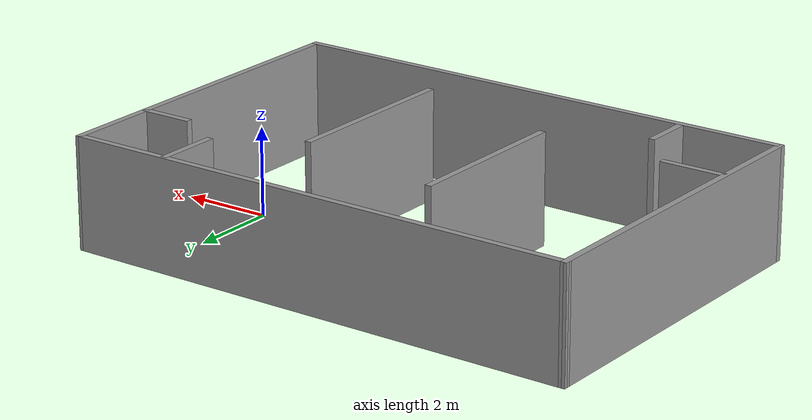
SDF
<?xml version='1.0'?>
<sdf version='1.7'>
  <model name='court'>
    <pose>-4.1874 -0.18803 0 0 -0 0</pose>
    <link name='Wall_18'>
      <collision name='Wall_18_Collision'>
        <geometry>
          <box>
            <size>12 0.15 2.5</size>
          </box>
        </geometry>
        <pose>0 0 1.25 0 -0 0</pose>
      </collision>
      <visual name='Wall_18_Visual'>
        <pose>0 0 1.25 0 -0 0</pose>
        <geometry>
          <box>
            <size>12 0.15 2.5</size>
          </box>
        </geometry>
        <material>
          <script>
            <uri>file://media/materials/scripts/gazebo.material</uri>
            <name>Gazebo/Grey</name>
          </script>
          <ambient>1 1 1 1</ambient>
        </material>
        <meta>
          <layer>0</layer>
        </meta>
      </visual>
      <pose>-0 -3.92513 0 0 -0 3.14159</pose>
    </link>
    <link name='Wall_19'>
      <collision name='Wall_19_Collision'>
        <geometry>
          <box>
            <size>8 0.15 2.5</size>
          </box>
        </geometry>
        <pose>0 0 1.25 0 -0 0</pose>
      </collision>
      <visual name='Wall_19_Visual'>
        <pose>0 0 1.25 0 -0 0</pose>
        <geometry>
          <box>
            <size>8 0.15 2.5</size>
          </box>
        </geometry>
        <material>
          <script>
            <uri>file://media/materials/scripts/gazebo.material</uri>
            <name>Gazebo/Grey</name>
          </script>
          <ambient>1 1 1 1</ambient>
        </material>
        <meta>
          <layer>0</layer>
        </meta>
      </visual>
      <pose>-5.925 -0.000127 0 0 -0 1.5708</pose>
    </link>
    <link name='Wall_20'>
      <collision name='Wall_20_Collision'>
        <geometry>
          <box>
            <size>12.0001 0.15 2.5</size>
          </box>
        </geometry>
        <pose>0 0 1.25 0 -0 0</pose>
      </collision>
      <visual name='Wall_20_Visual'>
        <pose>0 0 1.25 0 -0 0</pose>
        <geometry>
          <box>
            <size>12.0001 0.15 2.5</size>
          </box>
        </geometry>
        <material>
          <script>
            <uri>file://media/materials/scripts/gazebo.material</uri>
            <name>Gazebo/Grey</name>
          </script>
          <ambient>1 1 1 1</ambient>
        </material>
        <meta>
          <layer>0</layer>
        </meta>
      </visual>
      <pose>-0 3.90476 0 0 -0 -0.003395</pose>
    </link>
    <link name='Wall_22'>
      <collision name='Wall_22_Collision'>
        <geometry>
          <box>
            <size>1.5 0.15 2.5</size>
          </box>
        </geometry>
        <pose>0 0 1.25 0 -0 0</pose>
      </collision>
      <visual name='Wall_22_Visual'>
        <pose>0 0 1.25 0 -0 0</pose>
        <geometry>
          <box>
            <size>1.5 0.15 2.5</size>
          </box>
        </geometry>
        <material>
          <script>
            <uri>file://media/materials/scripts/gazebo.material</uri>
            <name>Gazebo/Grey</name>
          </script>
          <ambient>1 1 1 1</ambient>
        </material>
        <meta>
          <layer>0</layer>
        </meta>
      </visual>
      <pose>-5.2112 -1.7604 0 0 -0 0</pose>
    </link>
    <link name='Wall_24'>
      <collision name='Wall_24_Collision'>
        <geometry>
          <box>
            <size>1.25 0.15 2.5</size>
          </box>
        </geometry>
        <pose>0 0 1.25 0 -0 0</pose>
      </collision>
      <visual name='Wall_24_Visual'>
        <pose>0 0 1.25 0 -0 0</pose>
        <geometry>
          <box>
            <size>1.25 0.15 2.5</size>
          </box>
        </geometry>
        <material>
          <script>
            <uri>file://media/materials/scripts/gazebo.material</uri>
            <name>Gazebo/Grey</name>
          </script>
          <ambient>1 1 1 1</ambient>
        </material>
        <meta>
          <layer>0</layer>
        </meta>
      </visual>
      <pose>-3.62519 -3.36502 0 0 -0 1.5708</pose>
    </link>
    <link name='Wall_26'>
      <collision name='Wall_26_Collision'>
        <geometry>
          <box>
            <size>4 0.15 2.5</size>
          </box>
        </geometry>
        <pose>0 0 1.25 0 -0 0</pose>
      </collision>
      <visual name='Wall_26_Visual'>
        <pose>0 0 1.25 0 -0 0</pose>
        <geometry>
          <box>
            <size>4 0.15 2.5</size>
          </box>
        </geometry>
        <material>
          <script>
            <uri>file://media/materials/scripts/gazebo.material</uri>
            <name>Gazebo/Grey</name>
          </script>
          <ambient>1 1 1 1</ambient>
        </material>
        <meta>
          <layer>0</layer>
        </meta>
      </visual>
      <pose>-1.55037 0.145024 0 0 -0 -1.5708</pose>
    </link>
    <link name='Wall_28'>
      <collision name='Wall_28_Collision'>
        <geometry>
          <box>
            <size>4.25 0.15 2.5</size>
          </box>
        </geometry>
        <pose>0 0 1.25 0 -0 0</pose>
      </collision>
      <visual name='Wall_28_Visual'>
        <pose>0 0 1.25 0 -0 0</pose>
        <geometry>
          <box>
            <size>4.25 0.15 2.5</size>
          </box>
        </geometry>
        <material>
          <script>
            <uri>file://media/materials/scripts/gazebo.material</uri>
            <name>Gazebo/Grey</name>
          </script>
          <ambient>1 1 1 1</ambient>
        </material>
        <meta>
          <layer>0</layer>
        </meta>
      </visual>
      <pose>1.93426 -0.645191 0 0 -0 -1.5708</pose>
    </link>
    <link name='Wall_30'>
      <collision name='Wall_30_Collision'>
        <geometry>
          <box>
            <size>1.5 0.15 2.5</size>
          </box>
        </geometry>
        <pose>0 0 1.25 0 -0 0</pose>
      </collision>
      <visual name='Wall_30_Visual'>
        <pose>0 0 1.25 0 -0 0</pose>
        <geometry>
          <box>
            <size>1.5 0.15 2.5</size>
          </box>
        </geometry>
        <material>
          <script>
            <uri>file://media/materials/scripts/gazebo.material</uri>
            <name>Gazebo/Grey</name>
          </script>
          <ambient>1 1 1 1</ambient>
        </material>
        <meta>
          <layer>0</layer>
        </meta>
      </visual>
      <pose>3.68987 3.20384 0 0 -0 -1.5708</pose>
    </link>
    <link name='Wall_32'>
      <collision name='Wall_32_Collision'>
        <geometry>
          <box>
            <size>1.25 0.15 2.5</size>
          </box>
        </geometry>
        <pose>0 0 1.25 0 -0 0</pose>
      </collision>
      <visual name='Wall_32_Visual'>
        <pose>0 0 1.25 0 -0 0</pose>
        <geometry>
          <box>
            <size>1.25 0.15 2.5</size>
          </box>
        </geometry>
        <material>
          <script>
            <uri>file://media/materials/scripts/gazebo.material</uri>
            <name>Gazebo/Grey</name>
          </script>
          <ambient>1 1 1 1</ambient>
        </material>
        <meta>
          <layer>0</layer>
        </meta>
      </visual>
      <pose>5.37429 1.85722 0 0 -0 3.14159</pose>
    </link>
    <link name='Wall_6'>
      <collision name='Wall_6_Collision'>
        <geometry>
          <box>
            <size>7.95977 0.15 2.5</size>
          </box>
        </geometry>
        <pose>0 0 1.25 0 -0 0</pose>
      </collision>
      <visual name='Wall_6_Visual'>
        <pose>0 0 1.25 0 -0 0</pose>
        <geometry>
          <box>
            <size>7.95977 0.15 2.5</size>
          </box>
        </geometry>
        <material>
          <script>
            <uri>file://media/materials/scripts/gazebo.material</uri>
            <name>Gazebo/Grey</name>
          </script>
          <ambient>1 1 1 1</ambient>
        </material>
        <meta>
          <layer>0</layer>
        </meta>
      </visual>
      <pose>5.925 -0.02024 0 0 -0 1.5708</pose>
    </link>
    <static>1</static>
  </model>
</sdf>
